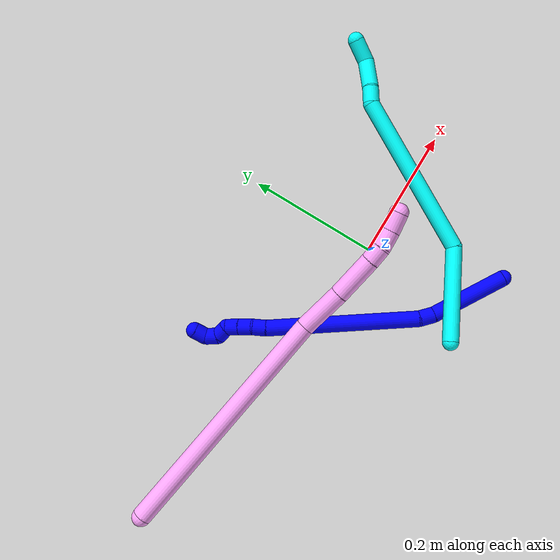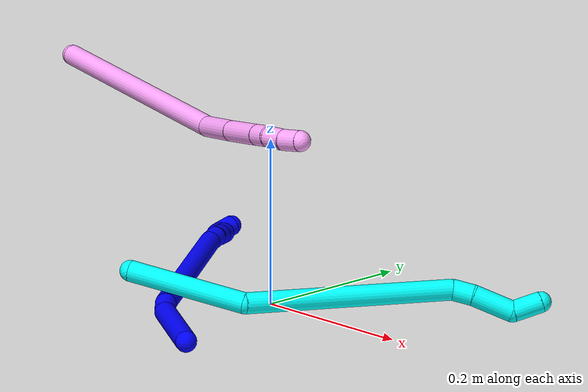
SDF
<sdf version="1.7">
 <world name="default">
  <model name="photoneo_s_sensor">
   <static>1</static>
   <pose>0 0 2 1.57079 1.57079 3.14159</pose>
   <link name="link">
    <inertial><mass>0.1</mass></inertial>
    <sensor name="sensor" type="depth">
     <update_rate>30</update_rate>
     <camera>
      <horizontal_fov>1.22</horizontal_fov>
      <image><width>1920</width><height>1200</height><format>B8G8R8</format></image>
      <clip><near>0.1</near><far>4</far></clip>
      <depth_camera><output>points</output></depth_camera>
     </camera>
     <plugin name="camera_plugin" filename="libgazebo_ros_depth_camera.so">
      <baseline>0.2</baseline>
      <alwaysOn>1</alwaysOn>
      <updateRate>0.0</updateRate>
      <cameraName>camera_ir</cameraName>
      <imageTopicName>/camera/color/image_raw</imageTopicName>
      <cameraInfoTopicName>/camera/color/camera_info</cameraInfoTopicName>
      <depthImageTopicName>/camera/depth/image_raw</depthImageTopicName>
      <depthImageCameraInfoTopicName>/camera/depth/camera_info</depthImageCameraInfoTopicName>
      <pointCloudTopicName>/camera/depth/points</pointCloudTopicName>
      <frameName>fr_optical</frameName>
      <pointCloudCutoff>0.1</pointCloudCutoff>
      <pointCloudCutoffMax>2.0</pointCloudCutoffMax>
      <distortionK1>0</distortionK1>
      <distortionK2>0</distortionK2>
      <distortionK3>0</distortionK3>
      <distortionT1>0</distortionT1>
      <distortionT2>0</distortionT2>
      <CxPrime>0</CxPrime>
      <Cx>0</Cx>
      <Cy>0</Cy>
      <focalLength>0</focalLength>
      <hackBaseline>0</hackBaseline>
     </plugin>
    </sensor>
   </link>
  </model>
  <model name="bin">
   <static>1</static>
   <link name="bottom">
    <collision name="collision-bottom">
     <pose>0 0 -0.01 0 -0 0</pose>
     <geometry><box><size>0.8 0.6 0.02</size></box></geometry>
     <surface>
      <friction><ode><mu>100</mu><mu2>100</mu2></ode></friction>
      <contact><collide_bitmask>65535</collide_bitmask></contact>
     </surface>
    </collision>
   </link>
   <link name="west_wall">
    <collision name="collision-west_wall">
     <pose>-0.41 0 0.1 0 -0 0</pose>
     <geometry><box><size>0.02 0.6 0.2</size></box></geometry>
     <surface>
      <friction><ode><mu>100</mu><mu2>100</mu2></ode></friction>
      <contact><collide_bitmask>65535</collide_bitmask></contact>
     </surface>
    </collision>
   </link>
   <link name="east_wall">
    <collision name="collision-east_wall">
     <pose>0.41 0 0.1 0 -0 0</pose>
     <geometry><box><size>0.02 0.6 0.2</size></box></geometry>
     <surface>
      <friction><ode><mu>100</mu><mu2>100</mu2></ode></friction>
      <contact><collide_bitmask>65535</collide_bitmask></contact>
     </surface>
    </collision>
   </link>
   <link name="south_wall">
    <collision name="collision-south_wall">
     <pose>0 -0.31 0.1 0 -0 0</pose>
     <geometry><box><size>0.8 0.02 0.2</size></box></geometry>
     <surface>
      <friction><ode><mu>100</mu><mu2>100</mu2></ode></friction>
      <contact><collide_bitmask>65535</collide_bitmask></contact>
     </surface>
    </collision>
   </link>
   <link name="north_wall">
    <collision name="collision-north_wall">
     <pose>0 0.31 0.1 0 -0 0</pose>
     <geometry><box><size>0.8 0.02 0.2</size></box></geometry>
     <surface>
      <friction><ode><mu>100</mu><mu2>100</mu2></ode></friction>
      <contact><collide_bitmask>65535</collide_bitmask></contact>
     </surface>
    </collision>
   </link>
  </model>
  <model name="1">
   <static>0</static>
   <link name="1">
    <collision name="collision-cylinder-e_1_1_4">
     <pose>-0.05177 0.030889 0.004226 -1.43482 -1.02875 0.916162</pose>
     <geometry><cylinder><radius>0.0125</radius><length>0.120865</length></cylinder></geometry>
     <surface>
      <friction><ode><mu>1.16</mu><mu2>1.16</mu2><slip1>0</slip1><slip2>0</slip2></ode></friction>
      <contact><ode><kp>1e+06</kp><kd>1</kd><max_vel>0</max_vel><min_depth>0.001</min_depth></ode></contact>
     </surface>
    </collision>
    <visual name="visual-cylinder-e_1_1_4">
     <pose>-0.05177 0.030889 0.004226 -1.43482 -1.02875 0.916162</pose>
     <geometry><cylinder><radius>0.0125</radius><length>0.120865</length></cylinder></geometry>
     <material><ambient>0 0 1 1</ambient></material>
    </visual>
    <collision name="collision-cylinder-e_2_4_5">
     <pose>-0.111849 0.069967 0.011024 -1.26651 -0.769144 0.577611</pose>
     <geometry><cylinder><radius>0.0125</radius><length>0.023894</length></cylinder></geometry>
     <surface>
      <friction><ode><mu>1.16</mu><mu2>1.16</mu2><slip1>0</slip1><slip2>0</slip2></ode></friction>
      <contact><ode><kp>1e+06</kp><kd>1</kd><max_vel>0</max_vel><min_depth>0.001</min_depth></ode></contact>
     </surface>
    </collision>
    <visual name="visual-cylinder-e_2_4_5">
     <pose>-0.111849 0.069967 0.011024 -1.26651 -0.769144 0.577611</pose>
     <geometry><cylinder><radius>0.0125</radius><length>0.023894</length></cylinder></geometry>
     <material><ambient>0 0 1 1</ambient></material>
    </visual>
    <collision name="collision-cylinder-e_3_5_6">
     <pose>-0.18606 0.174238 0.024213 -1.46075 -0.598365 0.539033</pose>
     <geometry><cylinder><radius>0.0125</radius><length>0.233985</length></cylinder></geometry>
     <surface>
      <friction><ode><mu>1.16</mu><mu2>1.16</mu2><slip1>0</slip1><slip2>0</slip2></ode></friction>
      <contact><ode><kp>1e+06</kp><kd>1</kd><max_vel>0</max_vel><min_depth>0.001</min_depth></ode></contact>
     </surface>
    </collision>
    <visual name="visual-cylinder-e_3_5_6">
     <pose>-0.18606 0.174238 0.024213 -1.46075 -0.598365 0.539033</pose>
     <geometry><cylinder><radius>0.0125</radius><length>0.233985</length></cylinder></geometry>
     <material><ambient>0 0 1 1</ambient></material>
    </visual>
    <collision name="collision-cylinder-e_4_6_7">
     <pose>-0.256466 0.279494 0.035618 -1.48497 -0.455012 0.418675</pose>
     <geometry><cylinder><radius>0.0125</radius><length>0.020504</length></cylinder></geometry>
     <surface>
      <friction><ode><mu>1.16</mu><mu2>1.16</mu2><slip1>0</slip1><slip2>0</slip2></ode></friction>
      <contact><ode><kp>1e+06</kp><kd>1</kd><max_vel>0</max_vel><min_depth>0.001</min_depth></ode></contact>
     </surface>
    </collision>
    <visual name="visual-cylinder-e_4_6_7">
     <pose>-0.256466 0.279494 0.035618 -1.48497 -0.455012 0.418675</pose>
     <geometry><cylinder><radius>0.0125</radius><length>0.020504</length></cylinder></geometry>
     <material><ambient>0 0 1 1</ambient></material>
    </visual>
    <collision name="collision-cylinder-e_5_7_8">
     <pose>-0.266486 0.297335 0.035249 -1.70374 -0.562711 0.637942</pose>
     <geometry><cylinder><radius>0.0125</radius><length>0.020675</length></cylinder></geometry>
     <surface>
      <friction><ode><mu>1.16</mu><mu2>1.16</mu2><slip1>0</slip1><slip2>0</slip2></ode></friction>
      <contact><ode><kp>1e+06</kp><kd>1</kd><max_vel>0</max_vel><min_depth>0.001</min_depth></ode></contact>
     </surface>
    </collision>
    <visual name="visual-cylinder-e_5_7_8">
     <pose>-0.266486 0.297335 0.035249 -1.70374 -0.562711 0.637942</pose>
     <geometry><cylinder><radius>0.0125</radius><length>0.020675</length></cylinder></geometry>
     <material><ambient>0 0 1 1</ambient></material>
    </visual>
    <collision name="collision-cylinder-e_6_8_9">
     <pose>-0.277619 0.314209 0.033002 -1.70262 -0.596197 0.674566</pose>
     <geometry><cylinder><radius>0.0125</radius><length>0.020011</length></cylinder></geometry>
     <surface>
      <friction><ode><mu>1.16</mu><mu2>1.16</mu2><slip1>0</slip1><slip2>0</slip2></ode></friction>
      <contact><ode><kp>1e+06</kp><kd>1</kd><max_vel>0</max_vel><min_depth>0.001</min_depth></ode></contact>
     </surface>
    </collision>
    <visual name="visual-cylinder-e_6_8_9">
     <pose>-0.277619 0.314209 0.033002 -1.70262 -0.596197 0.674566</pose>
     <geometry><cylinder><radius>0.0125</radius><length>0.020011</length></cylinder></geometry>
     <material><ambient>0 0 1 1</ambient></material>
    </visual>
    <collision name="collision-cylinder-e_7_9_10">
     <pose>-0.292776 0.324465 0.029609 -2.41491 -1.25818 2.17864</pose>
     <geometry><cylinder><radius>0.0125</radius><length>0.020049</length></cylinder></geometry>
     <surface>
      <friction><ode><mu>1.16</mu><mu2>1.16</mu2><slip1>0</slip1><slip2>0</slip2></ode></friction>
      <contact><ode><kp>1e+06</kp><kd>1</kd><max_vel>0</max_vel><min_depth>0.001</min_depth></ode></contact>
     </surface>
    </collision>
    <visual name="visual-cylinder-e_7_9_10">
     <pose>-0.292776 0.324465 0.029609 -2.41491 -1.25818 2.17864</pose>
     <geometry><cylinder><radius>0.0125</radius><length>0.020049</length></cylinder></geometry>
     <material><ambient>0 0 1 1</ambient></material>
    </visual>
    <collision name="collision-cylinder-e_8_10_11">
     <pose>-0.308029 0.334699 0.026618 -1.65448 -0.60774 0.657244</pose>
     <geometry><cylinder><radius>0.0125</radius><length>0.020013</length></cylinder></geometry>
     <surface>
      <friction><ode><mu>1.16</mu><mu2>1.16</mu2><slip1>0</slip1><slip2>0</slip2></ode></friction>
      <contact><ode><kp>1e+06</kp><kd>1</kd><max_vel>0</max_vel><min_depth>0.001</min_depth></ode></contact>
     </surface>
    </collision>
    <visual name="visual-cylinder-e_8_10_11">
     <pose>-0.308029 0.334699 0.026618 -1.65448 -0.60774 0.657244</pose>
     <geometry><cylinder><radius>0.0125</radius><length>0.020013</length></cylinder></geometry>
     <material><ambient>0 0 1 1</ambient></material>
    </visual>
    <collision name="collision-cylinder-e_9_11_2">
     <pose>-0.313872 0.352665 0.028022 -1.36021 -0.012918 0.010448</pose>
     <geometry><cylinder><radius>0.0125</radius><length>0.020004</length></cylinder></geometry>
     <surface>
      <friction><ode><mu>1.16</mu><mu2>1.16</mu2><slip1>0</slip1><slip2>0</slip2></ode></friction>
      <contact><ode><kp>1e+06</kp><kd>1</kd><max_vel>0</max_vel><min_depth>0.001</min_depth></ode></contact>
     </surface>
    </collision>
    <visual name="visual-cylinder-e_9_11_2">
     <pose>-0.313872 0.352665 0.028022 -1.36021 -0.012918 0.010448</pose>
     <geometry><cylinder><radius>0.0125</radius><length>0.020004</length></cylinder></geometry>
     <material><ambient>0 0 1 1</ambient></material>
    </visual>
    <collision name="collision-sphere-2">
     <pose>-0.314001 0.362446 0.030113 0 -0 0</pose>
     <geometry><sphere><radius>0.0125</radius></sphere></geometry>
     <surface>
      <friction><ode><mu>1.16</mu><mu2>1.16</mu2><slip1>0</slip1><slip2>0</slip2></ode></friction>
      <contact><ode><kp>1e+06</kp><kd>1</kd><max_vel>0</max_vel><min_depth>0.001</min_depth></ode></contact>
     </surface>
    </collision>
    <visual name="visual-sphere-2">
     <pose>-0.314001 0.362446 0.030113 0 -0 0</pose>
     <geometry><sphere><radius>0.0125</radius></sphere></geometry>
     <material><ambient>0 0 1 1</ambient></material>
    </visual>
    <collision name="collision-sphere-11">
     <pose>-0.313742 0.342885 0.025932 0 -0 0</pose>
     <geometry><sphere><radius>0.0125</radius></sphere></geometry>
     <surface>
      <friction><ode><mu>1.16</mu><mu2>1.16</mu2><slip1>0</slip1><slip2>0</slip2></ode></friction>
      <contact><ode><kp>1e+06</kp><kd>1</kd><max_vel>0</max_vel><min_depth>0.001</min_depth></ode></contact>
     </surface>
    </collision>
    <visual name="visual-sphere-11">
     <pose>-0.313742 0.342885 0.025932 0 -0 0</pose>
     <geometry><sphere><radius>0.0125</radius></sphere></geometry>
     <material><ambient>0 0 1 1</ambient></material>
    </visual>
    <collision name="collision-sphere-10">
     <pose>-0.302315 0.326513 0.027305 0 -0 0</pose>
     <geometry><sphere><radius>0.0125</radius></sphere></geometry>
     <surface>
      <friction><ode><mu>1.16</mu><mu2>1.16</mu2><slip1>0</slip1><slip2>0</slip2></ode></friction>
      <contact><ode><kp>1e+06</kp><kd>1</kd><max_vel>0</max_vel><min_depth>0.001</min_depth></ode></contact>
     </surface>
    </collision>
    <visual name="visual-sphere-10">
     <pose>-0.302315 0.326513 0.027305 0 -0 0</pose>
     <geometry><sphere><radius>0.0125</radius></sphere></geometry>
     <material><ambient>0 0 1 1</ambient></material>
    </visual>
    <collision name="collision-sphere-9">
     <pose>-0.283237 0.322417 0.031913 0 -0 0</pose>
     <geometry><sphere><radius>0.0125</radius></sphere></geometry>
     <surface>
      <friction><ode><mu>1.16</mu><mu2>1.16</mu2><slip1>0</slip1><slip2>0</slip2></ode></friction>
      <contact><ode><kp>1e+06</kp><kd>1</kd><max_vel>0</max_vel><min_depth>0.001</min_depth></ode></contact>
     </surface>
    </collision>
    <visual name="visual-sphere-9">
     <pose>-0.283237 0.322417 0.031913 0 -0 0</pose>
     <geometry><sphere><radius>0.0125</radius></sphere></geometry>
     <material><ambient>0 0 1 1</ambient></material>
    </visual>
    <collision name="collision-sphere-4">
     <pose>-0.10354 0.061777 0.008453 0 -0 0</pose>
     <geometry><sphere><radius>0.0125</radius></sphere></geometry>
     <surface>
      <friction><ode><mu>1.16</mu><mu2>1.16</mu2><slip1>0</slip1><slip2>0</slip2></ode></friction>
      <contact><ode><kp>1e+06</kp><kd>1</kd><max_vel>0</max_vel><min_depth>0.001</min_depth></ode></contact>
     </surface>
    </collision>
    <visual name="visual-sphere-4">
     <pose>-0.10354 0.061777 0.008453 0 -0 0</pose>
     <geometry><sphere><radius>0.0125</radius></sphere></geometry>
     <material><ambient>0 0 1 1</ambient></material>
    </visual>
    <collision name="collision-sphere-1">
     <geometry><sphere><radius>0.0125</radius></sphere></geometry>
     <surface>
      <friction><ode><mu>1.16</mu><mu2>1.16</mu2><slip1>0</slip1><slip2>0</slip2></ode></friction>
      <contact><ode><kp>1e+06</kp><kd>1</kd><max_vel>0</max_vel><min_depth>0.001</min_depth></ode></contact>
     </surface>
    </collision>
    <visual name="visual-sphere-1">
     <geometry><sphere><radius>0.0125</radius></sphere></geometry>
     <material><ambient>0 0 1 1</ambient></material>
    </visual>
    <collision name="collision-sphere-8">
     <pose>-0.272001 0.306002 0.03409 0 -0 0</pose>
     <geometry><sphere><radius>0.0125</radius></sphere></geometry>
     <surface>
      <friction><ode><mu>1.16</mu><mu2>1.16</mu2><slip1>0</slip1><slip2>0</slip2></ode></friction>
      <contact><ode><kp>1e+06</kp><kd>1</kd><max_vel>0</max_vel><min_depth>0.001</min_depth></ode></contact>
     </surface>
    </collision>
    <visual name="visual-sphere-8">
     <pose>-0.272001 0.306002 0.03409 0 -0 0</pose>
     <geometry><sphere><radius>0.0125</radius></sphere></geometry>
     <material><ambient>0 0 1 1</ambient></material>
    </visual>
    <collision name="collision-sphere-5">
     <pose>-0.120158 0.078156 0.013596 0 -0 0</pose>
     <geometry><sphere><radius>0.0125</radius></sphere></geometry>
     <surface>
      <friction><ode><mu>1.16</mu><mu2>1.16</mu2><slip1>0</slip1><slip2>0</slip2></ode></friction>
      <contact><ode><kp>1e+06</kp><kd>1</kd><max_vel>0</max_vel><min_depth>0.001</min_depth></ode></contact>
     </surface>
    </collision>
    <visual name="visual-sphere-5">
     <pose>-0.120158 0.078156 0.013596 0 -0 0</pose>
     <geometry><sphere><radius>0.0125</radius></sphere></geometry>
     <material><ambient>0 0 1 1</ambient></material>
    </visual>
    <collision name="collision-sphere-6">
     <pose>-0.251961 0.270319 0.034829 0 -0 0</pose>
     <geometry><sphere><radius>0.0125</radius></sphere></geometry>
     <surface>
      <friction><ode><mu>1.16</mu><mu2>1.16</mu2><slip1>0</slip1><slip2>0</slip2></ode></friction>
      <contact><ode><kp>1e+06</kp><kd>1</kd><max_vel>0</max_vel><min_depth>0.001</min_depth></ode></contact>
     </surface>
    </collision>
    <visual name="visual-sphere-6">
     <pose>-0.251961 0.270319 0.034829 0 -0 0</pose>
     <geometry><sphere><radius>0.0125</radius></sphere></geometry>
     <material><ambient>0 0 1 1</ambient></material>
    </visual>
    <collision name="collision-sphere-7">
     <pose>-0.260972 0.288669 0.036408 0 -0 0</pose>
     <geometry><sphere><radius>0.0125</radius></sphere></geometry>
     <surface>
      <friction><ode><mu>1.16</mu><mu2>1.16</mu2><slip1>0</slip1><slip2>0</slip2></ode></friction>
      <contact><ode><kp>1e+06</kp><kd>1</kd><max_vel>0</max_vel><min_depth>0.001</min_depth></ode></contact>
     </surface>
    </collision>
    <visual name="visual-sphere-7">
     <pose>-0.260972 0.288669 0.036408 0 -0 0</pose>
     <geometry><sphere><radius>0.0125</radius></sphere></geometry>
     <material><ambient>0 0 1 1</ambient></material>
    </visual>
    <inertial>
     <pose>-0.174203 0.169196 0.020492 0 -0 0</pose>
     <mass>0.5</mass>
     <inertia>
      <ixx>0.001316</ixx>
      <ixy>0</ixy>
      <ixz>0</ixz>
      <iyy>0.001081</iyy>
      <iyz>0</iyz>
      <izz>-0.000225</izz>
     </inertia>
    </inertial>
   </link>
   <pose>0.06912 -0.19946 0.011779 0.001681 -0.085182 -0.008422</pose>
  </model>
  <model name="3">
   <static>0</static>
   <link name="3">
    <collision name="collision-cylinder-e_1_1_4">
     <pose>0.044384 0.02408 0.050069 -0.448279 0.674049 -0.15942</pose>
     <geometry><cylinder><radius>0.0125</radius><length>0.142221</length></cylinder></geometry>
     <surface>
      <friction><ode><mu>1.16</mu><mu2>1.16</mu2><slip1>0</slip1><slip2>0</slip2></ode></friction>
      <contact><ode><kp>1e+06</kp><kd>1</kd><max_vel>0</max_vel><min_depth>0.001</min_depth></ode></contact>
     </surface>
    </collision>
    <visual name="visual-cylinder-e_1_1_4">
     <pose>0.044384 0.02408 0.050069 -0.448279 0.674049 -0.15942</pose>
     <geometry><cylinder><radius>0.0125</radius><length>0.142221</length></cylinder></geometry>
     <material><ambient>0.003922 1 0.996078 1</ambient></material>
    </visual>
    <collision name="collision-cylinder-e_2_4_5">
     <pose>0.145341 0.148522 0.146294 -1.13975 0.473306 -0.306655</pose>
     <geometry><cylinder><radius>0.0125</radius><length>0.24822</length></cylinder></geometry>
     <surface>
      <friction><ode><mu>1.16</mu><mu2>1.16</mu2><slip1>0</slip1><slip2>0</slip2></ode></friction>
      <contact><ode><kp>1e+06</kp><kd>1</kd><max_vel>0</max_vel><min_depth>0.001</min_depth></ode></contact>
     </surface>
    </collision>
    <visual name="visual-cylinder-e_2_4_5">
     <pose>0.145341 0.148522 0.146294 -1.13975 0.473306 -0.306655</pose>
     <geometry><cylinder><radius>0.0125</radius><length>0.24822</length></cylinder></geometry>
     <material><ambient>0.003922 1 0.996078 1</ambient></material>
    </visual>
    <collision name="collision-cylinder-e_3_5_6">
     <pose>0.210276 0.254208 0.200616 -0.577804 0.708934 -0.219119</pose>
     <geometry><cylinder><radius>0.0125</radius><length>0.025687</length></cylinder></geometry>
     <surface>
      <friction><ode><mu>1.16</mu><mu2>1.16</mu2><slip1>0</slip1><slip2>0</slip2></ode></friction>
      <contact><ode><kp>1e+06</kp><kd>1</kd><max_vel>0</max_vel><min_depth>0.001</min_depth></ode></contact>
     </surface>
    </collision>
    <visual name="visual-cylinder-e_3_5_6">
     <pose>0.210276 0.254208 0.200616 -0.577804 0.708934 -0.219119</pose>
     <geometry><cylinder><radius>0.0125</radius><length>0.025687</length></cylinder></geometry>
     <material><ambient>0.003922 1 0.996078 1</ambient></material>
    </visual>
    <collision name="collision-cylinder-e_4_6_7">
     <pose>0.237497 0.269585 0.220647 -0.702903 0.881278 -0.342433</pose>
     <geometry><cylinder><radius>0.0125</radius><length>0.048889</length></cylinder></geometry>
     <surface>
      <friction><ode><mu>1.16</mu><mu2>1.16</mu2><slip1>0</slip1><slip2>0</slip2></ode></friction>
      <contact><ode><kp>1e+06</kp><kd>1</kd><max_vel>0</max_vel><min_depth>0.001</min_depth></ode></contact>
     </surface>
    </collision>
    <visual name="visual-cylinder-e_4_6_7">
     <pose>0.237497 0.269585 0.220647 -0.702903 0.881278 -0.342433</pose>
     <geometry><cylinder><radius>0.0125</radius><length>0.048889</length></cylinder></geometry>
     <material><ambient>0.003922 1 0.996078 1</ambient></material>
    </visual>
    <collision name="collision-cylinder-e_5_7_2">
     <pose>0.259878 0.294398 0.241212 -1.03814 0.202658 -0.116051</pose>
     <geometry><cylinder><radius>0.0125</radius><length>0.034983</length></cylinder></geometry>
     <surface>
      <friction><ode><mu>1.16</mu><mu2>1.16</mu2><slip1>0</slip1><slip2>0</slip2></ode></friction>
      <contact><ode><kp>1e+06</kp><kd>1</kd><max_vel>0</max_vel><min_depth>0.001</min_depth></ode></contact>
     </surface>
    </collision>
    <visual name="visual-cylinder-e_5_7_2">
     <pose>0.259878 0.294398 0.241212 -1.03814 0.202658 -0.116051</pose>
     <geometry><cylinder><radius>0.0125</radius><length>0.034983</length></cylinder></geometry>
     <material><ambient>0.003922 1 0.996078 1</ambient></material>
    </visual>
    <collision name="collision-sphere-2">
     <pose>0.263399 0.309157 0.249913 0 -0 0</pose>
     <geometry><sphere><radius>0.0125</radius></sphere></geometry>
     <surface>
      <friction><ode><mu>1.16</mu><mu2>1.16</mu2><slip1>0</slip1><slip2>0</slip2></ode></friction>
      <contact><ode><kp>1e+06</kp><kd>1</kd><max_vel>0</max_vel><min_depth>0.001</min_depth></ode></contact>
     </surface>
    </collision>
    <visual name="visual-sphere-2">
     <pose>0.263399 0.309157 0.249913 0 -0 0</pose>
     <geometry><sphere><radius>0.0125</radius></sphere></geometry>
     <material><ambient>0.003922 1 0.996078 1</ambient></material>
    </visual>
    <collision name="collision-sphere-7">
     <pose>0.256358 0.279638 0.232511 0 -0 0</pose>
     <geometry><sphere><radius>0.0125</radius></sphere></geometry>
     <surface>
      <friction><ode><mu>1.16</mu><mu2>1.16</mu2><slip1>0</slip1><slip2>0</slip2></ode></friction>
      <contact><ode><kp>1e+06</kp><kd>1</kd><max_vel>0</max_vel><min_depth>0.001</min_depth></ode></contact>
     </surface>
    </collision>
    <visual name="visual-sphere-7">
     <pose>0.256358 0.279638 0.232511 0 -0 0</pose>
     <geometry><sphere><radius>0.0125</radius></sphere></geometry>
     <material><ambient>0.003922 1 0.996078 1</ambient></material>
    </visual>
    <collision name="collision-sphere-6">
     <pose>0.218637 0.259533 0.208782 0 -0 0</pose>
     <geometry><sphere><radius>0.0125</radius></sphere></geometry>
     <surface>
      <friction><ode><mu>1.16</mu><mu2>1.16</mu2><slip1>0</slip1><slip2>0</slip2></ode></friction>
      <contact><ode><kp>1e+06</kp><kd>1</kd><max_vel>0</max_vel><min_depth>0.001</min_depth></ode></contact>
     </surface>
    </collision>
    <visual name="visual-sphere-6">
     <pose>0.218637 0.259533 0.208782 0 -0 0</pose>
     <geometry><sphere><radius>0.0125</radius></sphere></geometry>
     <material><ambient>0.003922 1 0.996078 1</ambient></material>
    </visual>
    <collision name="collision-sphere-5">
     <pose>0.201914 0.248883 0.192449 0 -0 0</pose>
     <geometry><sphere><radius>0.0125</radius></sphere></geometry>
     <surface>
      <friction><ode><mu>1.16</mu><mu2>1.16</mu2><slip1>0</slip1><slip2>0</slip2></ode></friction>
      <contact><ode><kp>1e+06</kp><kd>1</kd><max_vel>0</max_vel><min_depth>0.001</min_depth></ode></contact>
     </surface>
    </collision>
    <visual name="visual-sphere-5">
     <pose>0.201914 0.248883 0.192449 0 -0 0</pose>
     <geometry><sphere><radius>0.0125</radius></sphere></geometry>
     <material><ambient>0.003922 1 0.996078 1</ambient></material>
    </visual>
    <collision name="collision-sphere-1">
     <geometry><sphere><radius>0.0125</radius></sphere></geometry>
     <surface>
      <friction><ode><mu>1.16</mu><mu2>1.16</mu2><slip1>0</slip1><slip2>0</slip2></ode></friction>
      <contact><ode><kp>1e+06</kp><kd>1</kd><max_vel>0</max_vel><min_depth>0.001</min_depth></ode></contact>
     </surface>
    </collision>
    <visual name="visual-sphere-1">
     <geometry><sphere><radius>0.0125</radius></sphere></geometry>
     <material><ambient>0.003922 1 0.996078 1</ambient></material>
    </visual>
    <collision name="collision-sphere-4">
     <pose>0.088768 0.04816 0.100138 0 -0 0</pose>
     <geometry><sphere><radius>0.0125</radius></sphere></geometry>
     <surface>
      <friction><ode><mu>1.16</mu><mu2>1.16</mu2><slip1>0</slip1><slip2>0</slip2></ode></friction>
      <contact><ode><kp>1e+06</kp><kd>1</kd><max_vel>0</max_vel><min_depth>0.001</min_depth></ode></contact>
     </surface>
    </collision>
    <visual name="visual-sphere-4">
     <pose>0.088768 0.04816 0.100138 0 -0 0</pose>
     <geometry><sphere><radius>0.0125</radius></sphere></geometry>
     <material><ambient>0.003922 1 0.996078 1</ambient></material>
    </visual>
    <inertial>
     <pose>0.136985 0.140598 0.135625 0 -0 0</pose>
     <mass>0.5</mass>
     <inertia>
      <ixx>0.000934</ixx>
      <ixy>0</ixy>
      <ixz>0</ixz>
      <iyy>0.000561</iyy>
      <iyz>0</iyz>
      <izz>-0.001862</izz>
     </inertia>
    </inertial>
   </link>
   <pose>-0.05595 -0.170801 0.063343 0.706355 1.06706 0.679816</pose>
  </model>
  <model name="4">
   <static>0</static>
   <link name="4">
    <collision name="collision-cylinder-e_1_1_4">
     <pose>0.022977 0.014023 -0.152132 -3.04967 0.149278 -2.03878</pose>
     <geometry><cylinder><radius>0.0125</radius><length>0.308991</length></cylinder></geometry>
     <surface>
      <friction><ode><mu>1.16</mu><mu2>1.16</mu2><slip1>0</slip1><slip2>0</slip2></ode></friction>
      <contact><ode><kp>1e+06</kp><kd>1</kd><max_vel>0</max_vel><min_depth>0.001</min_depth></ode></contact>
     </surface>
    </collision>
    <visual name="visual-cylinder-e_1_1_4">
     <pose>0.022977 0.014023 -0.152132 -3.04967 0.149278 -2.03878</pose>
     <geometry><cylinder><radius>0.0125</radius><length>0.308991</length></cylinder></geometry>
     <material><ambient>1 0.65098 0.996078 1</ambient></material>
    </visual>
    <collision name="collision-cylinder-e_2_4_5">
     <pose>0.055418 0.025533 -0.333459 3.05569 0.31238 2.60874</pose>
     <geometry><cylinder><radius>0.0125</radius><length>0.061584</length></cylinder></geometry>
     <surface>
      <friction><ode><mu>1.16</mu><mu2>1.16</mu2><slip1>0</slip1><slip2>0</slip2></ode></friction>
      <contact><ode><kp>1e+06</kp><kd>1</kd><max_vel>0</max_vel><min_depth>0.001</min_depth></ode></contact>
     </surface>
    </collision>
    <visual name="visual-cylinder-e_2_4_5">
     <pose>0.055418 0.025533 -0.333459 3.05569 0.31238 2.60874</pose>
     <geometry><cylinder><radius>0.0125</radius><length>0.061584</length></cylinder></geometry>
     <material><ambient>1 0.65098 0.996078 1</ambient></material>
    </visual>
    <collision name="collision-cylinder-e_3_5_6">
     <pose>0.074498 0.02212 -0.390018 3.10878 0.337777 2.9497</pose>
     <geometry><cylinder><radius>0.0125</radius><length>0.05804</length></cylinder></geometry>
     <surface>
      <friction><ode><mu>1.16</mu><mu2>1.16</mu2><slip1>0</slip1><slip2>0</slip2></ode></friction>
      <contact><ode><kp>1e+06</kp><kd>1</kd><max_vel>0</max_vel><min_depth>0.001</min_depth></ode></contact>
     </surface>
    </collision>
    <visual name="visual-cylinder-e_3_5_6">
     <pose>0.074498 0.02212 -0.390018 3.10878 0.337777 2.9497</pose>
     <geometry><cylinder><radius>0.0125</radius><length>0.05804</length></cylinder></geometry>
     <material><ambient>1 0.65098 0.996078 1</ambient></material>
    </visual>
    <collision name="collision-cylinder-e_4_6_7">
     <pose>0.087945 0.021463 -0.427598 -3.11796 0.358669 -3.01139</pose>
     <geometry><cylinder><radius>0.0125</radius><length>0.021823</length></cylinder></geometry>
     <surface>
      <friction><ode><mu>1.16</mu><mu2>1.16</mu2><slip1>0</slip1><slip2>0</slip2></ode></friction>
      <contact><ode><kp>1e+06</kp><kd>1</kd><max_vel>0</max_vel><min_depth>0.001</min_depth></ode></contact>
     </surface>
    </collision>
    <visual name="visual-cylinder-e_4_6_7">
     <pose>0.087945 0.021463 -0.427598 -3.11796 0.358669 -3.01139</pose>
     <geometry><cylinder><radius>0.0125</radius><length>0.021823</length></cylinder></geometry>
     <material><ambient>1 0.65098 0.996078 1</ambient></material>
    </visual>
    <collision name="collision-cylinder-e_5_7_8">
     <pose>0.095448 0.024516 -0.448911 -2.89355 0.310417 -1.79609</pose>
     <geometry><cylinder><radius>0.0125</radius><length>0.024048</length></cylinder></geometry>
     <surface>
      <friction><ode><mu>1.16</mu><mu2>1.16</mu2><slip1>0</slip1><slip2>0</slip2></ode></friction>
      <contact><ode><kp>1e+06</kp><kd>1</kd><max_vel>0</max_vel><min_depth>0.001</min_depth></ode></contact>
     </surface>
    </collision>
    <visual name="visual-cylinder-e_5_7_8">
     <pose>0.095448 0.024516 -0.448911 -2.89355 0.310417 -1.79609</pose>
     <geometry><cylinder><radius>0.0125</radius><length>0.024048</length></cylinder></geometry>
     <material><ambient>1 0.65098 0.996078 1</ambient></material>
    </visual>
    <collision name="collision-cylinder-e_6_8_2">
     <pose>0.104466 0.030645 -0.471107 -2.85103 0.432377 -1.96623</pose>
     <geometry><cylinder><radius>0.0125</radius><length>0.025513</length></cylinder></geometry>
     <surface>
      <friction><ode><mu>1.16</mu><mu2>1.16</mu2><slip1>0</slip1><slip2>0</slip2></ode></friction>
      <contact><ode><kp>1e+06</kp><kd>1</kd><max_vel>0</max_vel><min_depth>0.001</min_depth></ode></contact>
     </surface>
    </collision>
    <visual name="visual-cylinder-e_6_8_2">
     <pose>0.104466 0.030645 -0.471107 -2.85103 0.432377 -1.96623</pose>
     <geometry><cylinder><radius>0.0125</radius><length>0.025513</length></cylinder></geometry>
     <material><ambient>1 0.65098 0.996078 1</ambient></material>
    </visual>
    <collision name="collision-sphere-2">
     <pose>0.109812 0.033963 -0.482205 0 -0 0</pose>
     <geometry><sphere><radius>0.0125</radius></sphere></geometry>
     <surface>
      <friction><ode><mu>1.16</mu><mu2>1.16</mu2><slip1>0</slip1><slip2>0</slip2></ode></friction>
      <contact><ode><kp>1e+06</kp><kd>1</kd><max_vel>0</max_vel><min_depth>0.001</min_depth></ode></contact>
     </surface>
    </collision>
    <visual name="visual-sphere-2">
     <pose>0.109812 0.033963 -0.482205 0 -0 0</pose>
     <geometry><sphere><radius>0.0125</radius></sphere></geometry>
     <material><ambient>1 0.65098 0.996078 1</ambient></material>
    </visual>
    <collision name="collision-sphere-4">
     <pose>0.045954 0.028047 -0.304265 0 -0 0</pose>
     <geometry><sphere><radius>0.0125</radius></sphere></geometry>
     <surface>
      <friction><ode><mu>1.16</mu><mu2>1.16</mu2><slip1>0</slip1><slip2>0</slip2></ode></friction>
      <contact><ode><kp>1e+06</kp><kd>1</kd><max_vel>0</max_vel><min_depth>0.001</min_depth></ode></contact>
     </surface>
    </collision>
    <visual name="visual-sphere-4">
     <pose>0.045954 0.028047 -0.304265 0 -0 0</pose>
     <geometry><sphere><radius>0.0125</radius></sphere></geometry>
     <material><ambient>1 0.65098 0.996078 1</ambient></material>
    </visual>
    <collision name="collision-sphere-1">
     <geometry><sphere><radius>0.0125</radius></sphere></geometry>
     <surface>
      <friction><ode><mu>1.16</mu><mu2>1.16</mu2><slip1>0</slip1><slip2>0</slip2></ode></friction>
      <contact><ode><kp>1e+06</kp><kd>1</kd><max_vel>0</max_vel><min_depth>0.001</min_depth></ode></contact>
     </surface>
    </collision>
    <visual name="visual-sphere-1">
     <geometry><sphere><radius>0.0125</radius></sphere></geometry>
     <material><ambient>1 0.65098 0.996078 1</ambient></material>
    </visual>
    <collision name="collision-sphere-8">
     <pose>0.099121 0.027327 -0.46001 0 -0 0</pose>
     <geometry><sphere><radius>0.0125</radius></sphere></geometry>
     <surface>
      <friction><ode><mu>1.16</mu><mu2>1.16</mu2><slip1>0</slip1><slip2>0</slip2></ode></friction>
      <contact><ode><kp>1e+06</kp><kd>1</kd><max_vel>0</max_vel><min_depth>0.001</min_depth></ode></contact>
     </surface>
    </collision>
    <visual name="visual-sphere-8">
     <pose>0.099121 0.027327 -0.46001 0 -0 0</pose>
     <geometry><sphere><radius>0.0125</radius></sphere></geometry>
     <material><ambient>1 0.65098 0.996078 1</ambient></material>
    </visual>
    <collision name="collision-sphere-5">
     <pose>0.064881 0.023019 -0.362653 0 -0 0</pose>
     <geometry><sphere><radius>0.0125</radius></sphere></geometry>
     <surface>
      <friction><ode><mu>1.16</mu><mu2>1.16</mu2><slip1>0</slip1><slip2>0</slip2></ode></friction>
      <contact><ode><kp>1e+06</kp><kd>1</kd><max_vel>0</max_vel><min_depth>0.001</min_depth></ode></contact>
     </surface>
    </collision>
    <visual name="visual-sphere-5">
     <pose>0.064881 0.023019 -0.362653 0 -0 0</pose>
     <geometry><sphere><radius>0.0125</radius></sphere></geometry>
     <material><ambient>1 0.65098 0.996078 1</ambient></material>
    </visual>
    <collision name="collision-sphere-6">
     <pose>0.084115 0.021222 -0.417384 0 -0 0</pose>
     <geometry><sphere><radius>0.0125</radius></sphere></geometry>
     <surface>
      <friction><ode><mu>1.16</mu><mu2>1.16</mu2><slip1>0</slip1><slip2>0</slip2></ode></friction>
      <contact><ode><kp>1e+06</kp><kd>1</kd><max_vel>0</max_vel><min_depth>0.001</min_depth></ode></contact>
     </surface>
    </collision>
    <visual name="visual-sphere-6">
     <pose>0.084115 0.021222 -0.417384 0 -0 0</pose>
     <geometry><sphere><radius>0.0125</radius></sphere></geometry>
     <material><ambient>1 0.65098 0.996078 1</ambient></material>
    </visual>
    <collision name="collision-sphere-7">
     <pose>0.091775 0.021705 -0.437812 0 -0 0</pose>
     <geometry><sphere><radius>0.0125</radius></sphere></geometry>
     <surface>
      <friction><ode><mu>1.16</mu><mu2>1.16</mu2><slip1>0</slip1><slip2>0</slip2></ode></friction>
      <contact><ode><kp>1e+06</kp><kd>1</kd><max_vel>0</max_vel><min_depth>0.001</min_depth></ode></contact>
     </surface>
    </collision>
    <visual name="visual-sphere-7">
     <pose>0.091775 0.021705 -0.437812 0 -0 0</pose>
     <geometry><sphere><radius>0.0125</radius></sphere></geometry>
     <material><ambient>1 0.65098 0.996078 1</ambient></material>
    </visual>
    <inertial>
     <pose>0.043433 0.018058 -0.244653 0 -0 0</pose>
     <mass>0.5</mass>
     <inertia>
      <ixx>-0.003302</ixx>
      <ixy>0</ixy>
      <ixz>0</ixz>
      <iyy>-0.000987</iyy>
      <iyz>0</iyz>
      <izz>-0.000643</izz>
     </inertia>
    </inertial>
   </link>
   <pose>-0.436258 0.076597 0.215196 -1.13269 -1.10632 0.857191</pose>
  </model>
 </world>
</sdf>
